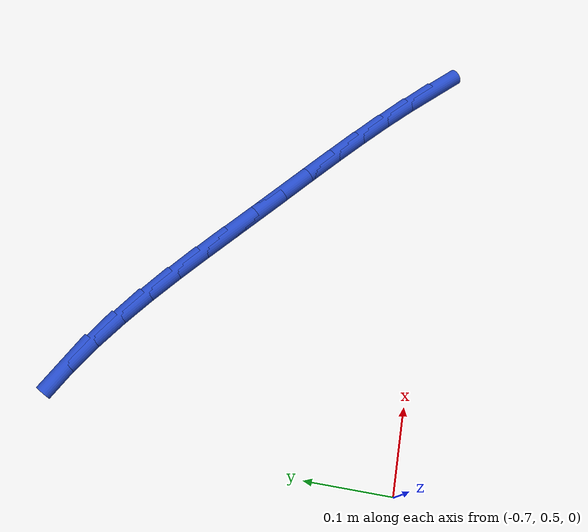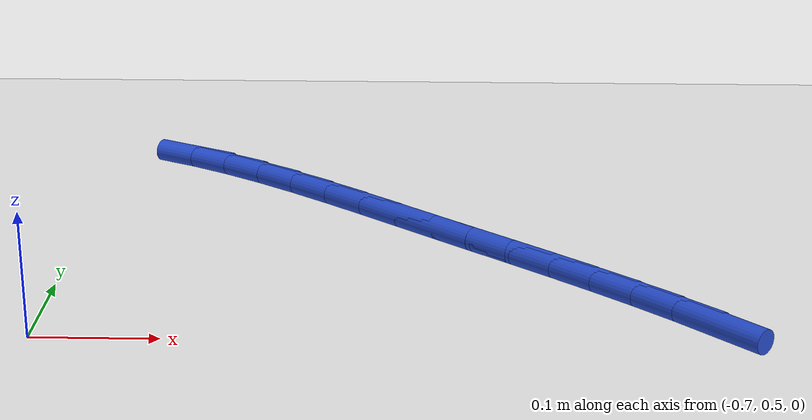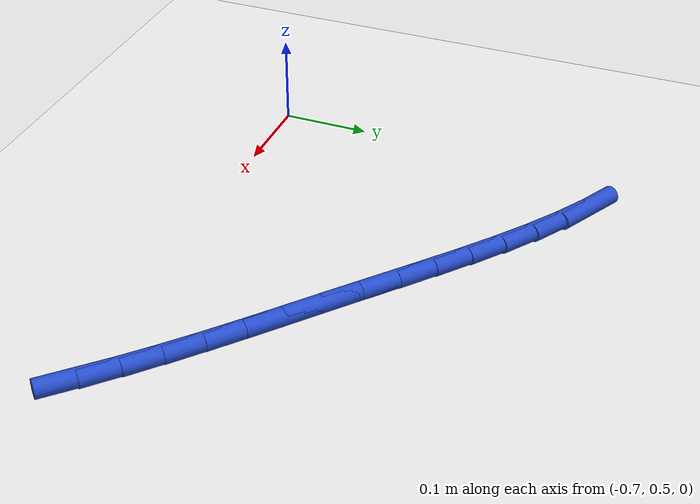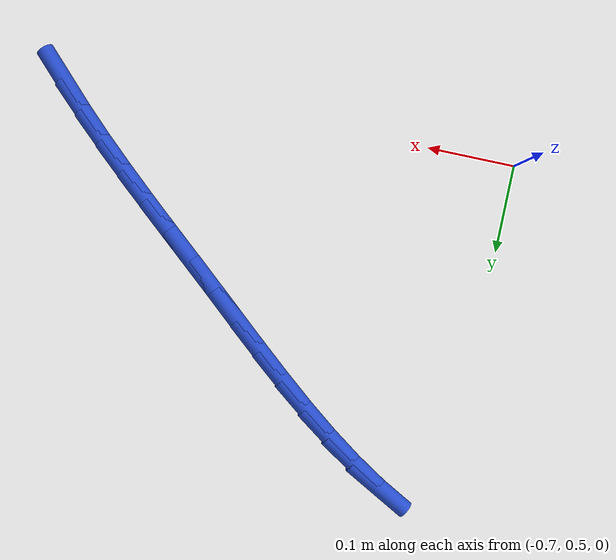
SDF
<sdf version="1.6">
 <world name="default">
  <model name="ground_plane">
   <static>1</static>
   <link name="link">
    <collision name="collision">
     <geometry><plane><normal>0 0 1</normal><size>100 100</size></plane></geometry>
     <surface><friction><ode><mu>100</mu><mu2>50</mu2></ode></friction></surface>
    </collision>
    <visual name="visual">
     <cast_shadows>0</cast_shadows>
     <geometry><plane><normal>0 0 1</normal><size>100 100</size></plane></geometry>
     <material>
      <script><uri>file://media/materials/scripts/gazebo.material</uri><name>Gazebo/WhiteGlow</name></script>
     </material>
    </visual>
   </link>
  </model>
  <model name="line">
   <link name="link_14">
    <pose>-0.18092075765760057 0.5138805766886716 0.01 0 1.57 -0.7998857184148789</pose>
    <collision name="collision">
     <geometry><cylinder><radius>0.01</radius><length>0.08</length></cylinder></geometry>
    </collision>
    <visual name="visual">
     <material>
      <script><name>Gazebo/Blue</name><uri>file://media/materials/scripts/gazebo.material</uri></script>
     </material>
     <geometry><cylinder><radius>0.01</radius><length>0.08</length></cylinder></geometry>
    </visual>
   </link>
   <link name="link_15">
    <pose>-0.20897982631849887 0.542764670267479 0.01 0 1.57 -0.7677964591328875</pose>
    <collision name="collision">
     <geometry><cylinder><radius>0.01</radius><length>0.08</length></cylinder></geometry>
    </collision>
    <visual name="visual">
     <material>
      <script><name>Gazebo/Blue</name><uri>file://media/materials/scripts/gazebo.material</uri></script>
     </material>
     <geometry><cylinder><radius>0.01</radius><length>0.08</length></cylinder></geometry>
    </visual>
   </link>
   <link name="link_16">
    <pose>-0.23825619871281184 0.5710281387904191 0.01 0 1.57 -0.7427239045836503</pose>
    <collision name="collision">
     <geometry><cylinder><radius>0.01</radius><length>0.08</length></cylinder></geometry>
    </collision>
    <visual name="visual">
     <material>
      <script><name>Gazebo/Blue</name><uri>file://media/materials/scripts/gazebo.material</uri></script>
     </material>
     <geometry><cylinder><radius>0.01</radius><length>0.08</length></cylinder></geometry>
    </visual>
   </link>
   <link name="link_17">
    <pose>-0.26853413928591957 0.5988262225385326 0.01 0 1.57 -0.7244025391302594</pose>
    <collision name="collision">
     <geometry><cylinder><radius>0.01</radius><length>0.08</length></cylinder></geometry>
    </collision>
    <visual name="visual">
     <material>
      <script><name>Gazebo/Blue</name><uri>file://media/materials/scripts/gazebo.material</uri></script>
     </material>
     <geometry><cylinder><radius>0.01</radius><length>0.08</length></cylinder></geometry>
    </visual>
   </link>
   <link name="link_18">
    <pose>-0.29959791248320244 0.6263141617928608 0.01 0 1.57 -0.7125906616806067</pose>
    <collision name="collision">
     <geometry><cylinder><radius>0.01</radius><length>0.08</length></cylinder></geometry>
    </collision>
    <visual name="visual">
     <material>
      <script><name>Gazebo/Blue</name><uri>file://media/materials/scripts/gazebo.material</uri></script>
     </material>
     <geometry><cylinder><radius>0.01</radius><length>0.08</length></cylinder></geometry>
    </visual>
   </link>
   <link name="link_19">
    <pose>-0.33123178275004067 0.6536471968344447 0.01 0 1.57 -0.7070903993795209</pose>
    <collision name="collision">
     <geometry><cylinder><radius>0.01</radius><length>0.08</length></cylinder></geometry>
    </collision>
    <visual name="visual">
     <material>
      <script><name>Gazebo/Blue</name><uri>file://media/materials/scripts/gazebo.material</uri></script>
     </material>
     <geometry><cylinder><radius>0.01</radius><length>0.08</length></cylinder></geometry>
    </visual>
   </link>
   <link name="link_20">
    <pose>-0.36322001453181474 0.680980567944326 0.01 0 1.57 -0.7077578900891363</pose>
    <collision name="collision">
     <geometry><cylinder><radius>0.01</radius><length>0.08</length></cylinder></geometry>
    </collision>
    <visual name="visual">
     <material>
      <script><name>Gazebo/Blue</name><uri>file://media/materials/scripts/gazebo.material</uri></script>
     </material>
     <geometry><cylinder><radius>0.01</radius><length>0.08</length></cylinder></geometry>
    </visual>
   </link>
   <link name="link_21">
    <pose>-0.3953468722739047 0.7084695154035453 0.01 0 1.57 -0.7127461964558518</pose>
    <collision name="collision">
     <geometry><cylinder><radius>0.01</radius><length>0.08</length></cylinder></geometry>
    </collision>
    <visual name="visual">
     <material>
      <script><name>Gazebo/Blue</name><uri>file://media/materials/scripts/gazebo.material</uri></script>
     </material>
     <geometry><cylinder><radius>0.01</radius><length>0.08</length></cylinder></geometry>
    </visual>
   </link>
   <link name="link_22">
    <pose>-0.42743500156394176 0.7362037679230788 0.01 0 1.57 -0.7119506680566565</pose>
    <collision name="collision">
     <geometry><cylinder><radius>0.01</radius><length>0.08</length></cylinder></geometry>
    </collision>
    <visual name="visual">
     <material>
      <script><name>Gazebo/Blue</name><uri>file://media/materials/scripts/gazebo.material</uri></script>
     </material>
     <geometry><cylinder><radius>0.01</radius><length>0.08</length></cylinder></geometry>
    </visual>
   </link>
   <link name="link_23">
    <pose>-0.45952732371604627 0.7638970724727846 0.01 0 1.57 -0.7017311433910982</pose>
    <collision name="collision">
     <geometry><cylinder><radius>0.01</radius><length>0.08</length></cylinder></geometry>
    </collision>
    <visual name="visual">
     <material>
      <script><name>Gazebo/Blue</name><uri>file://media/materials/scripts/gazebo.material</uri></script>
     </material>
     <geometry><cylinder><radius>0.01</radius><length>0.08</length></cylinder></geometry>
    </visual>
   </link>
   <link name="link_24">
    <pose>-0.4917451969610661 0.7911292945050753 0.01 0 1.57 -0.6818177769213483</pose>
    <collision name="collision">
     <geometry><cylinder><radius>0.01</radius><length>0.08</length></cylinder></geometry>
    </collision>
    <visual name="visual">
     <material>
      <script><name>Gazebo/Blue</name><uri>file://media/materials/scripts/gazebo.material</uri></script>
     </material>
     <geometry><cylinder><radius>0.01</radius><length>0.08</length></cylinder></geometry>
    </visual>
   </link>
   <link name="link_25">
    <pose>-0.5242100750947678 0.8174801363555947 0.01 0 1.57 -0.6517178875779612</pose>
    <collision name="collision">
     <geometry><cylinder><radius>0.01</radius><length>0.08</length></cylinder></geometry>
    </collision>
    <visual name="visual">
     <material>
      <script><name>Gazebo/Blue</name><uri>file://media/materials/scripts/gazebo.material</uri></script>
     </material>
     <geometry><cylinder><radius>0.01</radius><length>0.08</length></cylinder></geometry>
    </visual>
   </link>
   <link name="link_26">
    <pose>-0.5570434119129173 0.8425293003599874 0.01 0 1.57 -0.610744372104478</pose>
    <collision name="collision">
     <geometry><cylinder><radius>0.01</radius><length>0.08</length></cylinder></geometry>
    </collision>
    <visual name="visual">
     <material>
      <script><name>Gazebo/Blue</name><uri>file://media/materials/scripts/gazebo.material</uri></script>
     </material>
     <geometry><cylinder><radius>0.01</radius><length>0.08</length></cylinder></geometry>
    </visual>
   </link>
   <link name="link_27">
    <pose>-0.5903666612112809 0.8658564888538977 0.01 0 1.57 -0.5580859223085373</pose>
    <collision name="collision">
     <geometry><cylinder><radius>0.01</radius><length>0.08</length></cylinder></geometry>
    </collision>
    <visual name="visual">
     <material>
      <script><name>Gazebo/Blue</name><uri>file://media/materials/scripts/gazebo.material</uri></script>
     </material>
     <geometry><cylinder><radius>0.01</radius><length>0.08</length></cylinder></geometry>
    </visual>
   </link>
   <link name="link_28">
    <pose>-0.6243012767856253 0.8870414041729702 0.01 0 1.57 -0.4929404429563941</pose>
    <collision name="collision">
     <geometry><cylinder><radius>0.01</radius><length>0.08</length></cylinder></geometry>
    </collision>
    <visual name="visual">
     <material>
      <script><name>Gazebo/Blue</name><uri>file://media/materials/scripts/gazebo.material</uri></script>
     </material>
     <geometry><cylinder><radius>0.01</radius><length>0.08</length></cylinder></geometry>
    </visual>
   </link>
  </model>
 </world>
</sdf>
